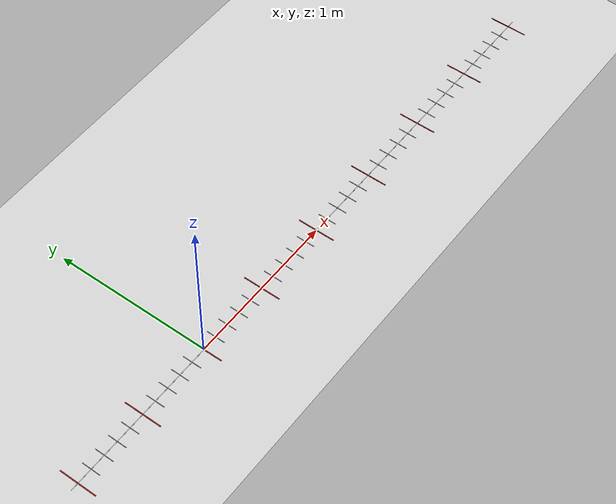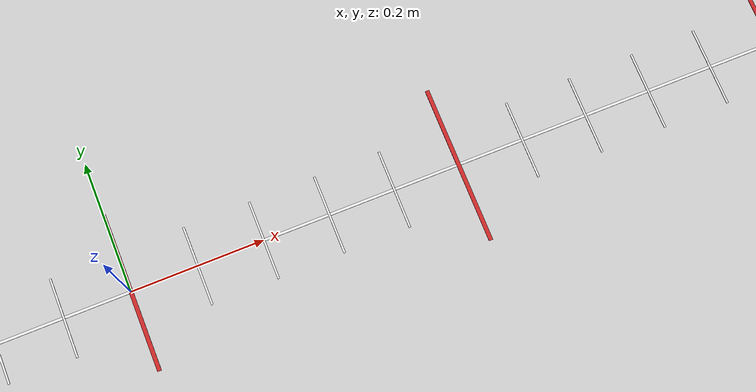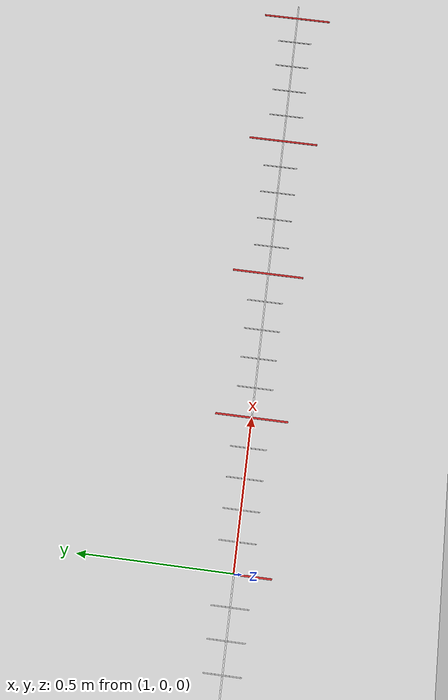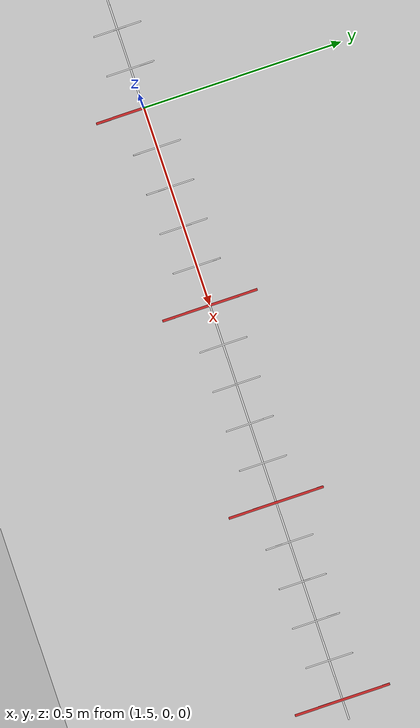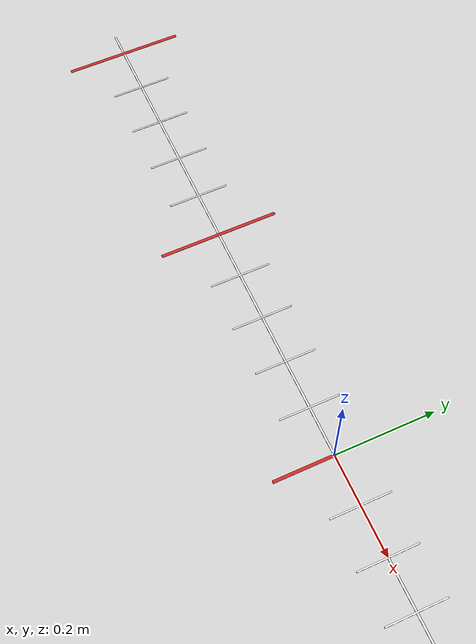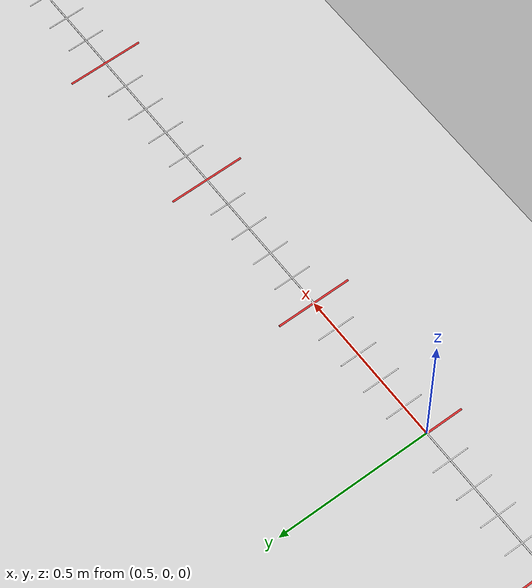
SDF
<?xml version="1.0"?>
<sdf version="1.6">
  <world name="recon_world">

    <!-- The robot is ~12 cm wide, so use a small, accurate time step. -->
    <physics type="ode">
      <max_step_size>0.001</max_step_size>
      <real_time_factor>1.0</real_time_factor>
      <real_time_update_rate>1000</real_time_update_rate>
      <ode>
        <solver>
          <type>quick</type>
          <iters>150</iters>
          <sor>1.3</sor>
        </solver>
        <constraints>
          <cfm>0.0</cfm>
          <erp>0.2</erp>
          <contact_max_correcting_vel>0.1</contact_max_correcting_vel>
          <contact_surface_layer>0.0005</contact_surface_layer>
        </constraints>
      </ode>
    </physics>

    <gravity>0 0 -9.81</gravity>

    <include><uri>model://sun</uri></include>

    <!-- flat ground with a grid so the robot's motion is easy to see -->
    <model name="ground">
      <static>true</static>
      <link name="link">
        <collision name="collision">
          <geometry><plane><normal>0 0 1</normal><size>40 40</size></plane></geometry>
          <surface>
            <friction><ode><mu>1.0</mu><mu2>1.0</mu2></ode></friction>
          </surface>
        </collision>
        <visual name="visual">
          <cast_shadows>false</cast_shadows>
          <geometry><plane><normal>0 0 1</normal><size>40 40</size></plane></geometry>
          <material><script>
            <uri>file://media/materials/scripts/gazebo.material</uri>
            <name>Gazebo/Grey</name>
          </script></material>
        </visual>
      </link>
    </model>

    <!-- 10 cm tape ruler along +x (red every 50 cm) so the walking distance is easy to see -->
    <model name="ruler">
      <static>true</static>
      <link name="link">
        <visual name="tick_-10"><pose>-1.00 0 0.0006 0 0 0</pose><geometry><box><size>0.006 0.24 0.001</size></box></geometry><material><script><uri>file://media/materials/scripts/gazebo.material</uri><name>Gazebo/Red</name></script></material></visual>
        <visual name="tick_-9"><pose>-0.90 0 0.0006 0 0 0</pose><geometry><box><size>0.003 0.12 0.001</size></box></geometry><material><script><uri>file://media/materials/scripts/gazebo.material</uri><name>Gazebo/White</name></script></material></visual>
        <visual name="tick_-8"><pose>-0.80 0 0.0006 0 0 0</pose><geometry><box><size>0.003 0.12 0.001</size></box></geometry><material><script><uri>file://media/materials/scripts/gazebo.material</uri><name>Gazebo/White</name></script></material></visual>
        <visual name="tick_-7"><pose>-0.70 0 0.0006 0 0 0</pose><geometry><box><size>0.003 0.12 0.001</size></box></geometry><material><script><uri>file://media/materials/scripts/gazebo.material</uri><name>Gazebo/White</name></script></material></visual>
        <visual name="tick_-6"><pose>-0.60 0 0.0006 0 0 0</pose><geometry><box><size>0.003 0.12 0.001</size></box></geometry><material><script><uri>file://media/materials/scripts/gazebo.material</uri><name>Gazebo/White</name></script></material></visual>
        <visual name="tick_-5"><pose>-0.50 0 0.0006 0 0 0</pose><geometry><box><size>0.006 0.24 0.001</size></box></geometry><material><script><uri>file://media/materials/scripts/gazebo.material</uri><name>Gazebo/Red</name></script></material></visual>
        <visual name="tick_-4"><pose>-0.40 0 0.0006 0 0 0</pose><geometry><box><size>0.003 0.12 0.001</size></box></geometry><material><script><uri>file://media/materials/scripts/gazebo.material</uri><name>Gazebo/White</name></script></material></visual>
        <visual name="tick_-3"><pose>-0.30 0 0.0006 0 0 0</pose><geometry><box><size>0.003 0.12 0.001</size></box></geometry><material><script><uri>file://media/materials/scripts/gazebo.material</uri><name>Gazebo/White</name></script></material></visual>
        <visual name="tick_-2"><pose>-0.20 0 0.0006 0 0 0</pose><geometry><box><size>0.003 0.12 0.001</size></box></geometry><material><script><uri>file://media/materials/scripts/gazebo.material</uri><name>Gazebo/White</name></script></material></visual>
        <visual name="tick_-1"><pose>-0.10 0 0.0006 0 0 0</pose><geometry><box><size>0.003 0.12 0.001</size></box></geometry><material><script><uri>file://media/materials/scripts/gazebo.material</uri><name>Gazebo/White</name></script></material></visual>
        <visual name="tick_0"><pose>0.00 0 0.0006 0 0 0</pose><geometry><box><size>0.006 0.24 0.001</size></box></geometry><material><script><uri>file://media/materials/scripts/gazebo.material</uri><name>Gazebo/Red</name></script></material></visual>
        <visual name="tick_1"><pose>0.10 0 0.0006 0 0 0</pose><geometry><box><size>0.003 0.12 0.001</size></box></geometry><material><script><uri>file://media/materials/scripts/gazebo.material</uri><name>Gazebo/White</name></script></material></visual>
        <visual name="tick_2"><pose>0.20 0 0.0006 0 0 0</pose><geometry><box><size>0.003 0.12 0.001</size></box></geometry><material><script><uri>file://media/materials/scripts/gazebo.material</uri><name>Gazebo/White</name></script></material></visual>
        <visual name="tick_3"><pose>0.30 0 0.0006 0 0 0</pose><geometry><box><size>0.003 0.12 0.001</size></box></geometry><material><script><uri>file://media/materials/scripts/gazebo.material</uri><name>Gazebo/White</name></script></material></visual>
        <visual name="tick_4"><pose>0.40 0 0.0006 0 0 0</pose><geometry><box><size>0.003 0.12 0.001</size></box></geometry><material><script><uri>file://media/materials/scripts/gazebo.material</uri><name>Gazebo/White</name></script></material></visual>
        <visual name="tick_5"><pose>0.50 0 0.0006 0 0 0</pose><geometry><box><size>0.006 0.24 0.001</size></box></geometry><material><script><uri>file://media/materials/scripts/gazebo.material</uri><name>Gazebo/Red</name></script></material></visual>
        <visual name="tick_6"><pose>0.60 0 0.0006 0 0 0</pose><geometry><box><size>0.003 0.12 0.001</size></box></geometry><material><script><uri>file://media/materials/scripts/gazebo.material</uri><name>Gazebo/White</name></script></material></visual>
        <visual name="tick_7"><pose>0.70 0 0.0006 0 0 0</pose><geometry><box><size>0.003 0.12 0.001</size></box></geometry><material><script><uri>file://media/materials/scripts/gazebo.material</uri><name>Gazebo/White</name></script></material></visual>
        <visual name="tick_8"><pose>0.80 0 0.0006 0 0 0</pose><geometry><box><size>0.003 0.12 0.001</size></box></geometry><material><script><uri>file://media/materials/scripts/gazebo.material</uri><name>Gazebo/White</name></script></material></visual>
        <visual name="tick_9"><pose>0.90 0 0.0006 0 0 0</pose><geometry><box><size>0.003 0.12 0.001</size></box></geometry><material><script><uri>file://media/materials/scripts/gazebo.material</uri><name>Gazebo/White</name></script></material></visual>
        <visual name="tick_10"><pose>1.00 0 0.0006 0 0 0</pose><geometry><box><size>0.006 0.24 0.001</size></box></geometry><material><script><uri>file://media/materials/scripts/gazebo.material</uri><name>Gazebo/Red</name></script></material></visual>
        <visual name="tick_11"><pose>1.10 0 0.0006 0 0 0</pose><geometry><box><size>0.003 0.12 0.001</size></box></geometry><material><script><uri>file://media/materials/scripts/gazebo.material</uri><name>Gazebo/White</name></script></material></visual>
        <visual name="tick_12"><pose>1.20 0 0.0006 0 0 0</pose><geometry><box><size>0.003 0.12 0.001</size></box></geometry><material><script><uri>file://media/materials/scripts/gazebo.material</uri><name>Gazebo/White</name></script></material></visual>
        <visual name="tick_13"><pose>1.30 0 0.0006 0 0 0</pose><geometry><box><size>0.003 0.12 0.001</size></box></geometry><material><script><uri>file://media/materials/scripts/gazebo.material</uri><name>Gazebo/White</name></script></material></visual>
        <visual name="tick_14"><pose>1.40 0 0.0006 0 0 0</pose><geometry><box><size>0.003 0.12 0.001</size></box></geometry><material><script><uri>file://media/materials/scripts/gazebo.material</uri><name>Gazebo/White</name></script></material></visual>
        <visual name="tick_15"><pose>1.50 0 0.0006 0 0 0</pose><geometry><box><size>0.006 0.24 0.001</size></box></geometry><material><script><uri>file://media/materials/scripts/gazebo.material</uri><name>Gazebo/Red</name></script></material></visual>
        <visual name="tick_16"><pose>1.60 0 0.0006 0 0 0</pose><geometry><box><size>0.003 0.12 0.001</size></box></geometry><material><script><uri>file://media/materials/scripts/gazebo.material</uri><name>Gazebo/White</name></script></material></visual>
        <visual name="tick_17"><pose>1.70 0 0.0006 0 0 0</pose><geometry><box><size>0.003 0.12 0.001</size></box></geometry><material><script><uri>file://media/materials/scripts/gazebo.material</uri><name>Gazebo/White</name></script></material></visual>
        <visual name="tick_18"><pose>1.80 0 0.0006 0 0 0</pose><geometry><box><size>0.003 0.12 0.001</size></box></geometry><material><script><uri>file://media/materials/scripts/gazebo.material</uri><name>Gazebo/White</name></script></material></visual>
        <visual name="tick_19"><pose>1.90 0 0.0006 0 0 0</pose><geometry><box><size>0.003 0.12 0.001</size></box></geometry><material><script><uri>file://media/materials/scripts/gazebo.material</uri><name>Gazebo/White</name></script></material></visual>
        <visual name="tick_20"><pose>2.00 0 0.0006 0 0 0</pose><geometry><box><size>0.006 0.24 0.001</size></box></geometry><material><script><uri>file://media/materials/scripts/gazebo.material</uri><name>Gazebo/Red</name></script></material></visual>
        <visual name="tick_21"><pose>2.10 0 0.0006 0 0 0</pose><geometry><box><size>0.003 0.12 0.001</size></box></geometry><material><script><uri>file://media/materials/scripts/gazebo.material</uri><name>Gazebo/White</name></script></material></visual>
        <visual name="tick_22"><pose>2.20 0 0.0006 0 0 0</pose><geometry><box><size>0.003 0.12 0.001</size></box></geometry><material><script><uri>file://media/materials/scripts/gazebo.material</uri><name>Gazebo/White</name></script></material></visual>
        <visual name="tick_23"><pose>2.30 0 0.0006 0 0 0</pose><geometry><box><size>0.003 0.12 0.001</size></box></geometry><material><script><uri>file://media/materials/scripts/gazebo.material</uri><name>Gazebo/White</name></script></material></visual>
        <visual name="tick_24"><pose>2.40 0 0.0006 0 0 0</pose><geometry><box><size>0.003 0.12 0.001</size></box></geometry><material><script><uri>file://media/materials/scripts/gazebo.material</uri><name>Gazebo/White</name></script></material></visual>
        <visual name="tick_25"><pose>2.50 0 0.0006 0 0 0</pose><geometry><box><size>0.006 0.24 0.001</size></box></geometry><material><script><uri>file://media/materials/scripts/gazebo.material</uri><name>Gazebo/Red</name></script></material></visual>
        <visual name="tick_26"><pose>2.60 0 0.0006 0 0 0</pose><geometry><box><size>0.003 0.12 0.001</size></box></geometry><material><script><uri>file://media/materials/scripts/gazebo.material</uri><name>Gazebo/White</name></script></material></visual>
        <visual name="tick_27"><pose>2.70 0 0.0006 0 0 0</pose><geometry><box><size>0.003 0.12 0.001</size></box></geometry><material><script><uri>file://media/materials/scripts/gazebo.material</uri><name>Gazebo/White</name></script></material></visual>
        <visual name="tick_28"><pose>2.80 0 0.0006 0 0 0</pose><geometry><box><size>0.003 0.12 0.001</size></box></geometry><material><script><uri>file://media/materials/scripts/gazebo.material</uri><name>Gazebo/White</name></script></material></visual>
        <visual name="tick_29"><pose>2.90 0 0.0006 0 0 0</pose><geometry><box><size>0.003 0.12 0.001</size></box></geometry><material><script><uri>file://media/materials/scripts/gazebo.material</uri><name>Gazebo/White</name></script></material></visual>
        <visual name="tick_30"><pose>3.00 0 0.0006 0 0 0</pose><geometry><box><size>0.006 0.24 0.001</size></box></geometry><material><script><uri>file://media/materials/scripts/gazebo.material</uri><name>Gazebo/Red</name></script></material></visual>
        <visual name="axis"><pose>1.0 0 0.0005 0 0 0</pose><geometry><box><size>4.1 0.004 0.001</size></box></geometry><material><script><uri>file://media/materials/scripts/gazebo.material</uri><name>Gazebo/White</name></script></material></visual>
      </link>
    </model>

    <!-- publishes /gazebo/model_states so the robot pose can be plotted/echoed -->
    <plugin name="gazebo_ros_state" filename="libgazebo_ros_state.so">
      <ros><namespace>/gazebo</namespace></ros>
      <update_rate>20.0</update_rate>
    </plugin>

    <gui>
      <camera name="user_camera">
        <pose>0.45 -0.45 0.28 0 0.45 2.35</pose>
      </camera>
    </gui>

  </world>
</sdf>
